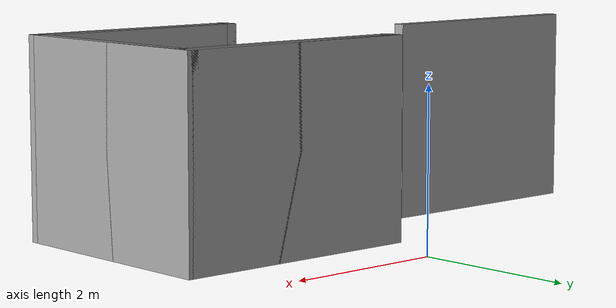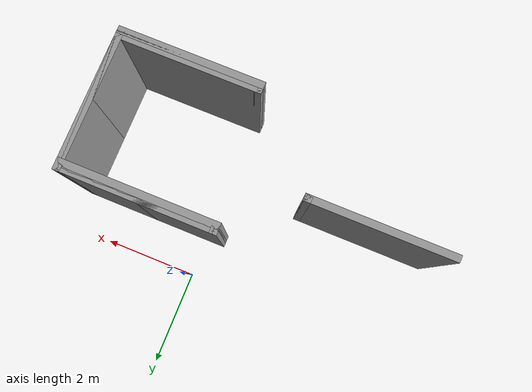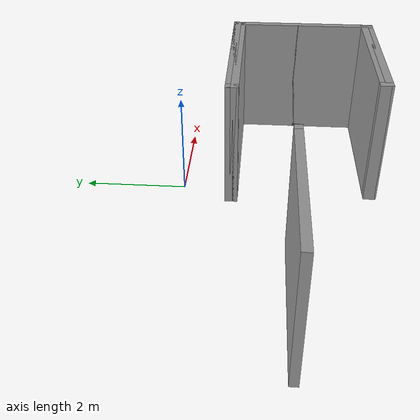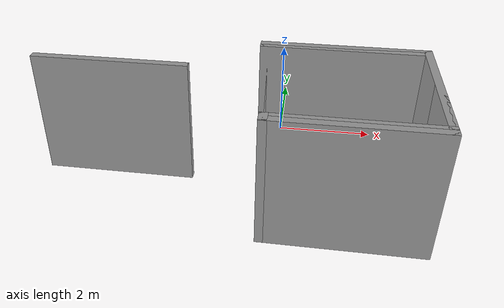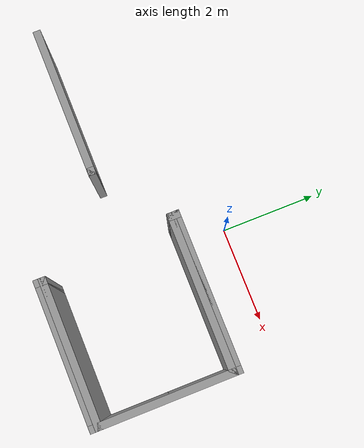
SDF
<?xml version='1.0'?>
<sdf version='1.6'>
  <model name='Open_Track'>
    <pose frame=''>-0.89 -2.345 0 0 -0 0</pose>
    <link name='Wall_0'>
      <collision name='Wall_0_Collision'>
        <geometry>
          <box>
            <size>3 0.15 2.5</size>
          </box>
        </geometry>
        <pose frame=''>0 0 1.25 0 -0 0</pose>
      </collision>
      <visual name='Wall_0_Visual'>
        <pose frame=''>0 0 1.25 0 -0 0</pose>
        <geometry>
          <box>
            <size>3 0.15 2.5</size>
          </box>
        </geometry>
        <material>
          <script>
            <uri>file://media/materials/scripts/gazebo.material</uri>
            <name>Gazebo/Grey</name>
          </script>
          <ambient>1 1 1 1</ambient>
        </material>
        <meta>
          <layer>0</layer>
        </meta>
      </visual>
      <pose frame=''>-2.225 0.245 0 0 -0 0</pose>
    </link>
    <link name='Wall_1'>
      <collision name='Wall_1_Collision'>
        <geometry>
          <box>
            <size>0.15 0.15 2.5</size>
          </box>
        </geometry>
        <pose frame=''>0 0 1.25 0 -0 0</pose>
      </collision>
      <visual name='Wall_1_Visual'>
        <pose frame=''>0 0 1.25 0 -0 0</pose>
        <geometry>
          <box>
            <size>0.15 0.15 2.5</size>
          </box>
        </geometry>
        <material>
          <script>
            <uri>file://media/materials/scripts/gazebo.material</uri>
            <name>Gazebo/Grey</name>
          </script>
          <ambient>1 1 1 1</ambient>
        </material>
        <meta>
          <layer>0</layer>
        </meta>
      </visual>
      <pose frame=''>-0.8 0.245 0 0 -0 0</pose>
    </link>
    <link name='Wall_10'>
      <collision name='Wall_10_Collision'>
        <geometry>
          <box>
            <size>0.25 0.15 2.5</size>
          </box>
        </geometry>
        <pose frame=''>0 0 1.25 0 -0 0</pose>
      </collision>
      <visual name='Wall_10_Visual'>
        <pose frame=''>0 0 1.25 0 -0 0</pose>
        <geometry>
          <box>
            <size>0.25 0.15 2.5</size>
          </box>
        </geometry>
        <material>
          <script>
            <uri>file://media/materials/scripts/gazebo.material</uri>
            <name>Gazebo/Grey</name>
          </script>
          <ambient>1 1 1 1</ambient>
        </material>
        <meta>
          <layer>0</layer>
        </meta>
      </visual>
      <pose frame=''>0.55 1.375 0 0 -0 -1.5708</pose>
    </link>
    <link name='Wall_11'>
      <collision name='Wall_11_Collision'>
        <geometry>
          <box>
            <size>3.25 0.15 2.5</size>
          </box>
        </geometry>
        <pose frame=''>0 0 1.25 0 -0 0</pose>
      </collision>
      <visual name='Wall_11_Visual'>
        <pose frame=''>0 0 1.25 0 -0 0</pose>
        <geometry>
          <box>
            <size>3.25 0.15 2.5</size>
          </box>
        </geometry>
        <material>
          <script>
            <uri>file://media/materials/scripts/gazebo.material</uri>
            <name>Gazebo/Grey</name>
          </script>
          <ambient>1 1 1 1</ambient>
        </material>
        <meta>
          <layer>0</layer>
        </meta>
      </visual>
      <pose frame=''>2.1 1.325 0 0 -0 0</pose>
    </link>
    <link name='Wall_12'>
      <collision name='Wall_12_Collision'>
        <geometry>
          <box>
            <size>0.15 0.15 2.5</size>
          </box>
        </geometry>
        <pose frame=''>0 0 1.25 0 -0 0</pose>
      </collision>
      <visual name='Wall_12_Visual'>
        <pose frame=''>0 0 1.25 0 -0 0</pose>
        <geometry>
          <box>
            <size>0.15 0.15 2.5</size>
          </box>
        </geometry>
        <material>
          <script>
            <uri>file://media/materials/scripts/gazebo.material</uri>
            <name>Gazebo/Grey</name>
          </script>
          <ambient>1 1 1 1</ambient>
        </material>
        <meta>
          <layer>0</layer>
        </meta>
      </visual>
      <pose frame=''>3.65 1.325 0 0 -0 0</pose>
    </link>
    <link name='Wall_3'>
      <collision name='Wall_3_Collision'>
        <geometry>
          <box>
            <size>3.25 0.15 2.5</size>
          </box>
        </geometry>
        <pose frame=''>0 0 1.25 0 -0 0</pose>
      </collision>
      <visual name='Wall_3_Visual'>
        <pose frame=''>0 0 1.25 0 -0 0</pose>
        <geometry>
          <box>
            <size>3.25 0.15 2.5</size>
          </box>
        </geometry>
        <material>
          <script>
            <uri>file://media/materials/scripts/gazebo.material</uri>
            <name>Gazebo/Grey</name>
          </script>
          <ambient>1 1 1 1</ambient>
        </material>
        <meta>
          <layer>0</layer>
        </meta>
      </visual>
      <pose frame=''>2.1 1.425 0 0 -0 0</pose>
    </link>
    <link name='Wall_4'>
      <collision name='Wall_4_Collision'>
        <geometry>
          <box>
            <size>3 0.15 2.5</size>
          </box>
        </geometry>
        <pose frame=''>0 0 1.25 0 -0 0</pose>
      </collision>
      <visual name='Wall_4_Visual'>
        <pose frame=''>0 0 1.25 0 -0 0</pose>
        <geometry>
          <box>
            <size>3 0.15 2.5</size>
          </box>
        </geometry>
        <material>
          <script>
            <uri>file://media/materials/scripts/gazebo.material</uri>
            <name>Gazebo/Grey</name>
          </script>
          <ambient>1 1 1 1</ambient>
        </material>
        <meta>
          <layer>0</layer>
        </meta>
      </visual>
      <pose frame=''>3.65 0 0 0 -0 -1.5708</pose>
    </link>
    <link name='Wall_5'>
      <collision name='Wall_5_Collision'>
        <geometry>
          <box>
            <size>3 0.15 2.5</size>
          </box>
        </geometry>
        <pose frame=''>0 0 1.25 0 -0 0</pose>
      </collision>
      <visual name='Wall_5_Visual'>
        <pose frame=''>0 0 1.25 0 -0 0</pose>
        <geometry>
          <box>
            <size>3 0.15 2.5</size>
          </box>
        </geometry>
        <material>
          <script>
            <uri>file://media/materials/scripts/gazebo.material</uri>
            <name>Gazebo/Grey</name>
          </script>
          <ambient>1 1 1 1</ambient>
        </material>
        <meta>
          <layer>0</layer>
        </meta>
      </visual>
      <pose frame=''>2.225 -1.425 0 0 -0 3.14159</pose>
    </link>
    <link name='Wall_6'>
      <collision name='Wall_6_Collision'>
        <geometry>
          <box>
            <size>0.25 0.15 2.5</size>
          </box>
        </geometry>
        <pose frame=''>0 0 1.25 0 -0 0</pose>
      </collision>
      <visual name='Wall_6_Visual'>
        <pose frame=''>0 0 1.25 0 -0 0</pose>
        <geometry>
          <box>
            <size>0.25 0.15 2.5</size>
          </box>
        </geometry>
        <material>
          <script>
            <uri>file://media/materials/scripts/gazebo.material</uri>
            <name>Gazebo/Grey</name>
          </script>
          <ambient>1 1 1 1</ambient>
        </material>
        <meta>
          <layer>0</layer>
        </meta>
      </visual>
      <pose frame=''>0.8 -1.375 0 0 -0 1.5708</pose>
    </link>
    <link name='Wall_7'>
      <collision name='Wall_7_Collision'>
        <geometry>
          <box>
            <size>3 0.15 2.5</size>
          </box>
        </geometry>
        <pose frame=''>0 0 1.25 0 -0 0</pose>
      </collision>
      <visual name='Wall_7_Visual'>
        <pose frame=''>0 0 1.25 0 -0 0</pose>
        <geometry>
          <box>
            <size>3 0.15 2.5</size>
          </box>
        </geometry>
        <material>
          <script>
            <uri>file://media/materials/scripts/gazebo.material</uri>
            <name>Gazebo/Grey</name>
          </script>
          <ambient>1 1 1 1</ambient>
        </material>
        <meta>
          <layer>0</layer>
        </meta>
      </visual>
      <pose frame=''>2.225 -1.325 0 0 -0 0</pose>
    </link>
    <link name='Wall_8'>
      <collision name='Wall_8_Collision'>
        <geometry>
          <box>
            <size>2.9 0.15 2.5</size>
          </box>
        </geometry>
        <pose frame=''>0 0 1.25 0 -0 0</pose>
      </collision>
      <visual name='Wall_8_Visual'>
        <pose frame=''>0 0 1.25 0 -0 0</pose>
        <geometry>
          <box>
            <size>2.9 0.15 2.5</size>
          </box>
        </geometry>
        <material>
          <script>
            <uri>file://media/materials/scripts/gazebo.material</uri>
            <name>Gazebo/Grey</name>
          </script>
          <ambient>1 1 1 1</ambient>
        </material>
        <meta>
          <layer>0</layer>
        </meta>
      </visual>
      <pose frame=''>3.65 0.05 0 0 -0 1.5708</pose>
    </link>
    <link name='Wall_9'>
      <collision name='Wall_9_Collision'>
        <geometry>
          <box>
            <size>3.25 0.15 2.5</size>
          </box>
        </geometry>
        <pose frame=''>0 0 1.25 0 -0 0</pose>
      </collision>
      <visual name='Wall_9_Visual'>
        <pose frame=''>0 0 1.25 0 -0 0</pose>
        <geometry>
          <box>
            <size>3.25 0.15 2.5</size>
          </box>
        </geometry>
        <material>
          <script>
            <uri>file://media/materials/scripts/gazebo.material</uri>
            <name>Gazebo/Grey</name>
          </script>
          <ambient>1 1 1 1</ambient>
        </material>
        <meta>
          <layer>0</layer>
        </meta>
      </visual>
      <pose frame=''>2.1 1.425 0 0 -0 3.14159</pose>
    </link>
    <static>1</static>
  </model>
</sdf>
